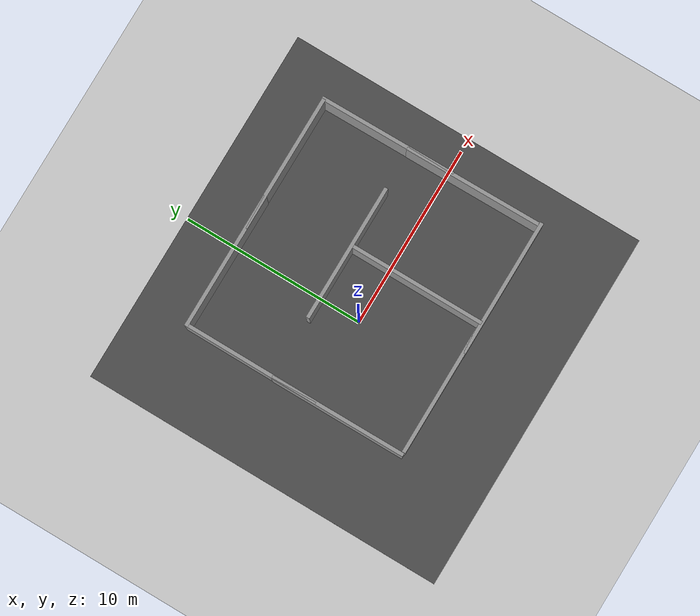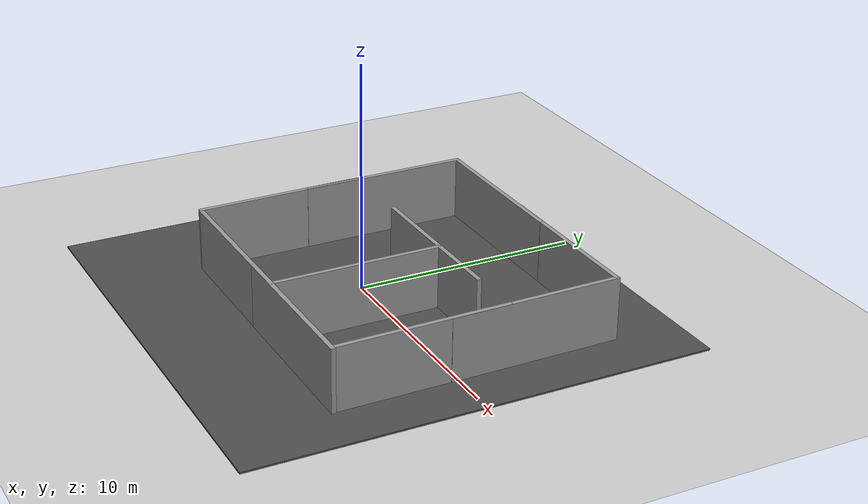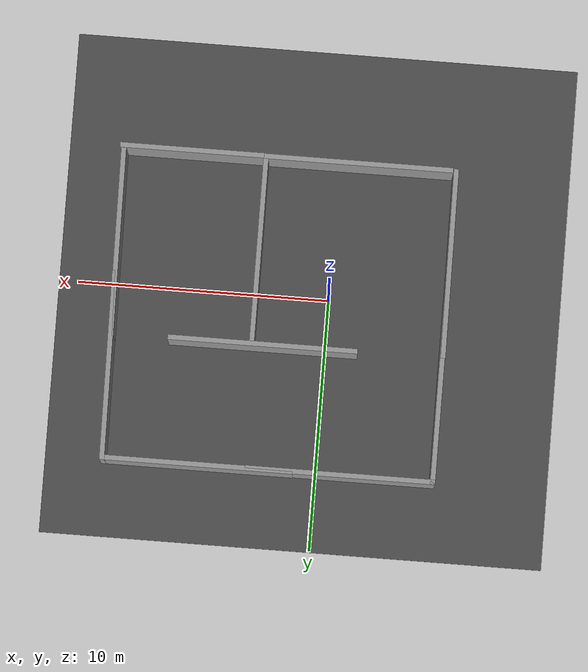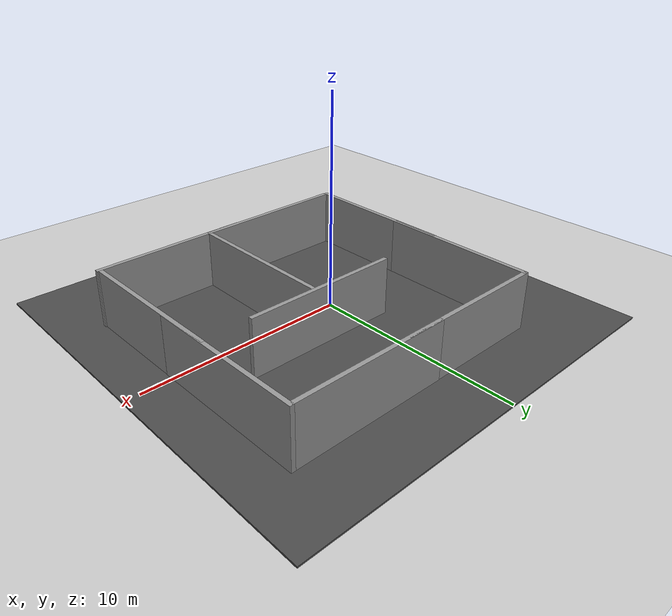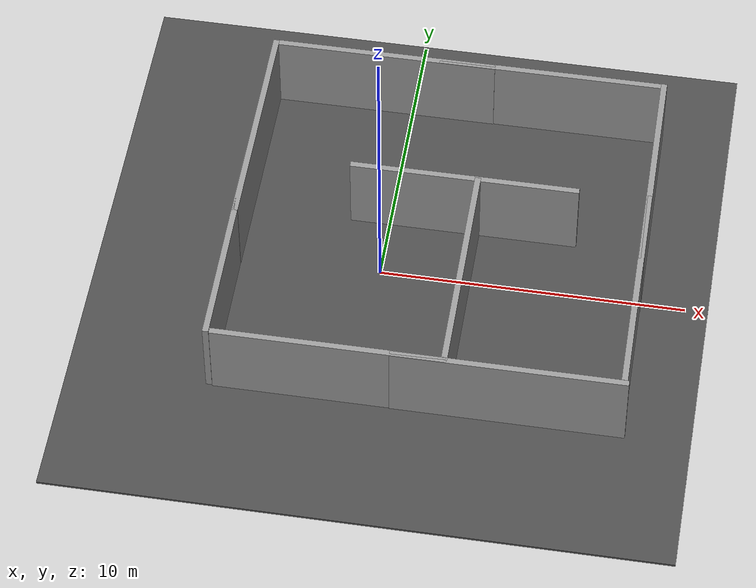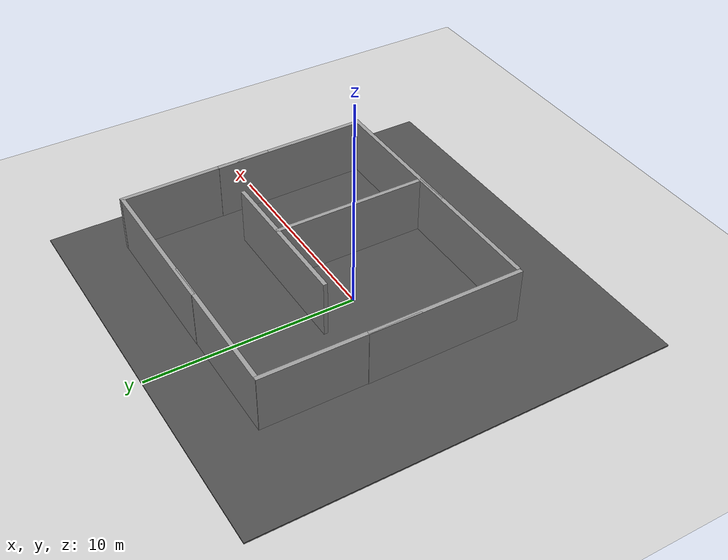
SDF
<sdf version="1.7">
 <world name="default">
  <light name="sun" type="directional">
   <pose>0 0 10 0 -0 0</pose>
   <diffuse>0.8 0.8 0.8 1</diffuse>
   <specular>0.2 0.2 0.2 1</specular>
   <attenuation>
    <range>1000</range>
    <constant>0.9</constant>
    <linear>0.01</linear>
    <quadratic>0.001</quadratic>
   </attenuation>
   <direction>-0.5 0.1 -0.9</direction>
   <spot><inner_angle>0</inner_angle><outer_angle>0</outer_angle><falloff>0</falloff></spot>
  </light>
  <model name="ground_plane">
   <static>1</static>
   <link name="link">
    <collision name="collision">
     <geometry><plane><normal>0 0 1</normal><size>100 100</size></plane></geometry>
     <surface><friction><ode><mu>100</mu><mu2>50</mu2></ode></friction></surface>
    </collision>
    <visual name="visual">
     <cast_shadows>0</cast_shadows>
     <geometry><plane><normal>0 0 1</normal><size>100 100</size></plane></geometry>
     <material>
      <script><uri>file://media/materials/scripts/gazebo.material</uri><name>Gazebo/Grey</name></script>
     </material>
    </visual>
   </link>
  </model>
  <gravity>0 0 -9.8</gravity>
  <magnetic_field>6e-06 2.3e-05 -4.2e-05</magnetic_field>
  <atmosphere type="adiabatic"/>
  <physics type="ode">
   <max_step_size>0.001</max_step_size>
   <real_time_factor>1</real_time_factor>
   <real_time_update_rate>1000</real_time_update_rate>
  </physics>
  <scene><ambient>0.4 0.4 0.4 1</ambient><background>0.7 0.7 0.7 1</background><shadows>1</shadows></scene>
  <audio><device>default</device></audio>
  <spherical_coordinates>
   <surface_model>EARTH_WGS84</surface_model>
   <latitude_deg>0</latitude_deg>
   <longitude_deg>0</longitude_deg>
   <elevation>0</elevation>
   <heading_deg>0</heading_deg>
  </spherical_coordinates>
  <model name="asphalt_plane">
   <static>1</static>
   <link name="link">
    <collision name="collision"><geometry><box><size>20 20 0.1</size></box></geometry></collision>
    <visual name="visual">
     <cast_shadows>0</cast_shadows>
     <geometry><box><size>20 20 0.1</size></box></geometry>
     <material>
      <script>
       <uri>model://asphalt_plane/materials/scripts</uri>
       <uri>model://asphalt_plane/materials/textures</uri>
       <name>vrc/asphalt</name>
      </script>
     </material>
    </visual>
   </link>
   <pose>0.756115 0.064103 0 0 -0 0</pose>
  </model>
  <model name="grey_wall">
   <static>1</static>
   <link name="link">
    <pose>0 0 1.4 0 -0 0</pose>
    <collision name="collision"><geometry><box><size>7.5 0.2 2.8</size></box></geometry></collision>
    <visual name="visual">
     <cast_shadows>0</cast_shadows>
     <geometry><box><size>7.5 0.2 2.8</size></box></geometry>
     <material>
      <script>
       <uri>model://grey_wall/materials/scripts</uri>
       <uri>model://grey_wall/materials/textures</uri>
       <name>vrc/grey_wall</name>
      </script>
     </material>
    </visual>
   </link>
   <pose>-0.789064 -5.30621 0 0 -0 0</pose>
  </model>
  <model name="grey_wall_0">
   <static>1</static>
   <link name="link">
    <pose>0 0 1.4 0 -0 0</pose>
    <collision name="collision"><geometry><box><size>7.5 0.2 2.8</size></box></geometry></collision>
    <visual name="visual">
     <cast_shadows>0</cast_shadows>
     <geometry><box><size>7.5 0.2 2.8</size></box></geometry>
     <material>
      <script>
       <uri>model://grey_wall/materials/scripts</uri>
       <uri>model://grey_wall/materials/textures</uri>
       <name>vrc/grey_wall</name>
      </script>
     </material>
    </visual>
   </link>
   <pose>2.43914 2.13074 0 0 -0 0</pose>
  </model>
  <model name="grey_wall_1">
   <static>1</static>
   <link name="link">
    <pose>0 0 1.4 0 -0 0</pose>
    <collision name="collision"><geometry><box><size>7.5 0.2 2.8</size></box></geometry></collision>
    <visual name="visual">
     <cast_shadows>0</cast_shadows>
     <geometry><box><size>7.5 0.2 2.8</size></box></geometry>
     <material>
      <script>
       <uri>model://grey_wall/materials/scripts</uri>
       <uri>model://grey_wall/materials/textures</uri>
       <name>vrc/grey_wall</name>
      </script>
     </material>
    </visual>
   </link>
   <pose>2.87689 -1.56979 0 0 0 -1.57041</pose>
  </model>
  <model name="grey_wall_2">
   <static>1</static>
   <link name="link">
    <pose>0 0 1.4 0 -0 0</pose>
    <collision name="collision"><geometry><box><size>7.5 0.2 2.8</size></box></geometry></collision>
    <visual name="visual">
     <cast_shadows>0</cast_shadows>
     <geometry><box><size>7.5 0.2 2.8</size></box></geometry>
     <material>
      <script>
       <uri>model://grey_wall/materials/scripts</uri>
       <uri>model://grey_wall/materials/textures</uri>
       <name>vrc/grey_wall</name>
      </script>
     </material>
    </visual>
   </link>
   <pose>-4.6668 -1.61834 0 0 0 -1.56707</pose>
  </model>
  <model name="grey_wall_3">
   <static>1</static>
   <link name="link">
    <pose>0 0 1.4 0 -0 0</pose>
    <collision name="collision"><geometry><box><size>7.5 0.2 2.8</size></box></geometry></collision>
    <visual name="visual">
     <cast_shadows>0</cast_shadows>
     <geometry><box><size>7.5 0.2 2.8</size></box></geometry>
     <material>
      <script>
       <uri>model://grey_wall/materials/scripts</uri>
       <uri>model://grey_wall/materials/textures</uri>
       <name>vrc/grey_wall</name>
      </script>
     </material>
    </visual>
   </link>
   <pose>-0.995302 7.03953 0 0 -0 0</pose>
  </model>
  <model name="grey_wall_4">
   <static>1</static>
   <link name="link">
    <pose>0 0 1.4 0 -0 0</pose>
    <collision name="collision"><geometry><box><size>7.5 0.2 2.8</size></box></geometry></collision>
    <visual name="visual">
     <cast_shadows>0</cast_shadows>
     <geometry><box><size>7.5 0.2 2.8</size></box></geometry>
     <material>
      <script>
       <uri>model://grey_wall/materials/scripts</uri>
       <uri>model://grey_wall/materials/textures</uri>
       <name>vrc/grey_wall</name>
      </script>
     </material>
    </visual>
   </link>
   <pose>8.47401 -1.46798 0 0 0 -1.56068</pose>
  </model>
  <model name="grey_wall_5">
   <static>1</static>
   <link name="link">
    <pose>0 0 1.4 0 -0 0</pose>
    <collision name="collision"><geometry><box><size>7.5 0.2 2.8</size></box></geometry></collision>
    <visual name="visual">
     <cast_shadows>0</cast_shadows>
     <geometry><box><size>7.5 0.2 2.8</size></box></geometry>
     <material>
      <script>
       <uri>model://grey_wall/materials/scripts</uri>
       <uri>model://grey_wall/materials/textures</uri>
       <name>vrc/grey_wall</name>
      </script>
     </material>
    </visual>
   </link>
   <pose>4.91349 -5.32149 0 0 -0 0</pose>
  </model>
  <model name="grey_wall_6">
   <static>1</static>
   <link name="link">
    <pose>0 0 1.4 0 -0 0</pose>
    <collision name="collision"><geometry><box><size>7.5 0.2 2.8</size></box></geometry></collision>
    <visual name="visual">
     <cast_shadows>0</cast_shadows>
     <geometry><box><size>7.5 0.2 2.8</size></box></geometry>
     <material>
      <script>
       <uri>model://grey_wall/materials/scripts</uri>
       <uri>model://grey_wall/materials/textures</uri>
       <name>vrc/grey_wall</name>
      </script>
     </material>
    </visual>
   </link>
   <pose>4.6429 7.05378 0 0 -0 0</pose>
  </model>
  <model name="grey_wall_7">
   <static>1</static>
   <link name="link">
    <pose>0 0 1.4 0 -0 0</pose>
    <collision name="collision"><geometry><box><size>7.5 0.2 2.8</size></box></geometry></collision>
    <visual name="visual">
     <cast_shadows>0</cast_shadows>
     <geometry><box><size>7.5 0.2 2.8</size></box></geometry>
     <material>
      <script>
       <uri>model://grey_wall/materials/scripts</uri>
       <uri>model://grey_wall/materials/textures</uri>
       <name>vrc/grey_wall</name>
      </script>
     </material>
    </visual>
   </link>
   <pose>-4.65755 3.37405 0 0 0 -1.57261</pose>
  </model>
  <model name="grey_wall_8">
   <static>1</static>
   <link name="link">
    <pose>0 0 1.4 0 -0 0</pose>
    <collision name="collision"><geometry><box><size>7.5 0.2 2.8</size></box></geometry></collision>
    <visual name="visual">
     <cast_shadows>0</cast_shadows>
     <geometry><box><size>7.5 0.2 2.8</size></box></geometry>
     <material>
      <script>
       <uri>model://grey_wall/materials/scripts</uri>
       <uri>model://grey_wall/materials/textures</uri>
       <name>vrc/grey_wall</name>
      </script>
     </material>
    </visual>
   </link>
   <pose>8.43646 3.4108 0 0 0 -1.56022</pose>
  </model>
 </world>
</sdf>
